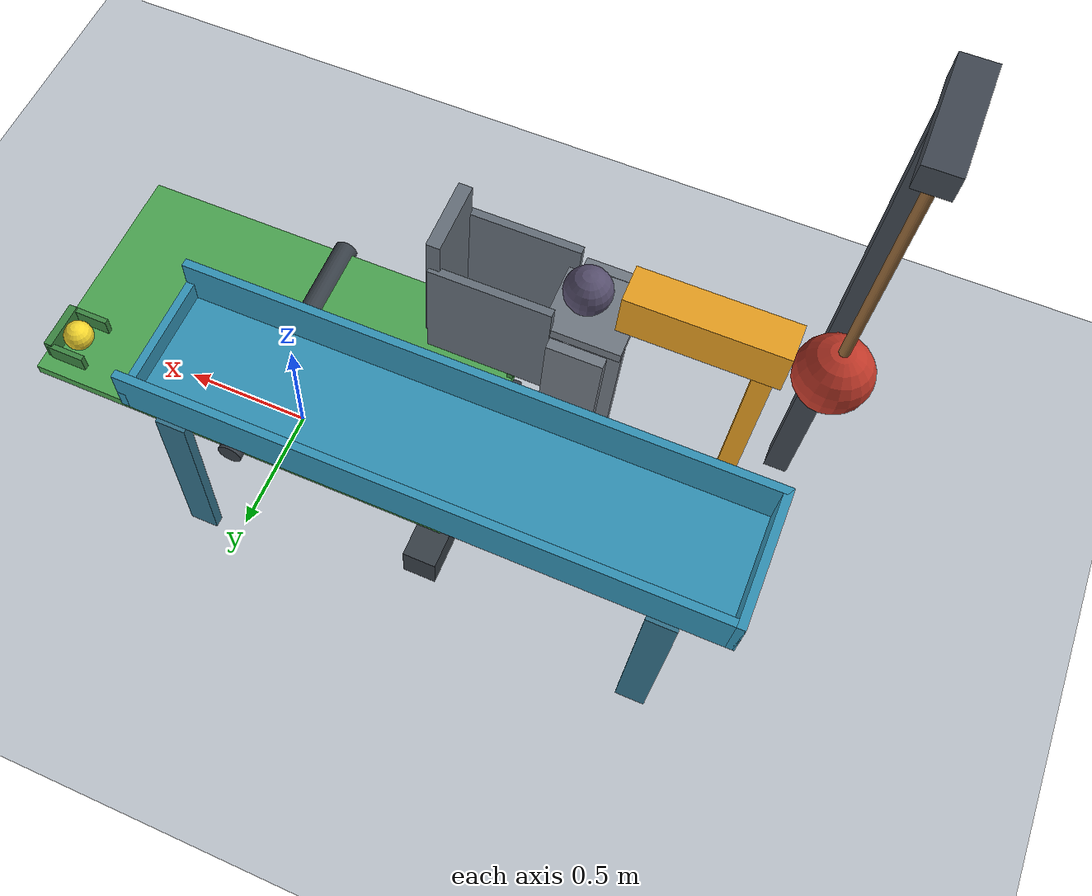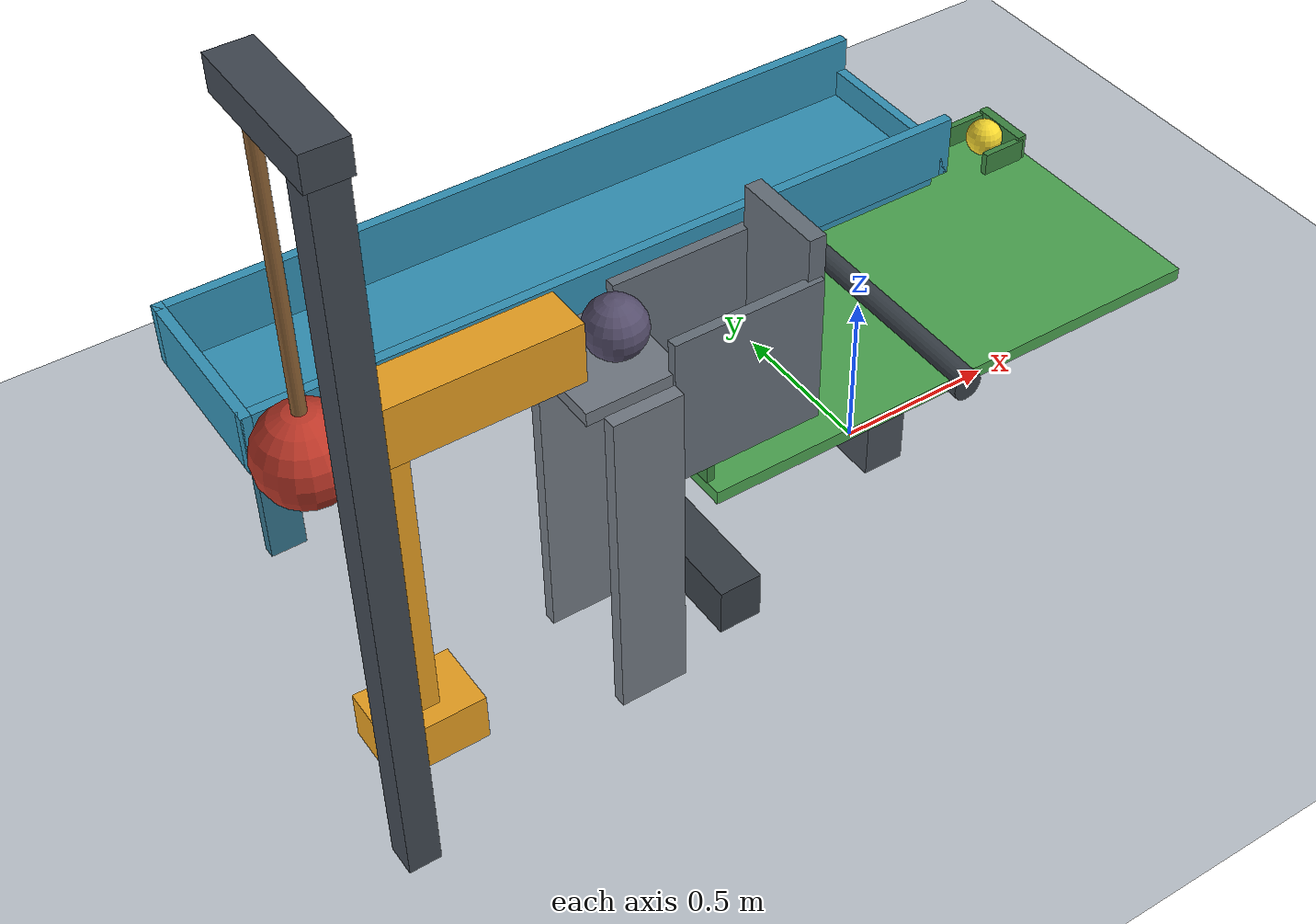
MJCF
<mujoco model="pendulum_cart_seesaw_catch_revised">
  <compiler angle="radian" autolimits="true"/>
  <option timestep="0.002" gravity="0 0 -9.81" integrator="implicitfast" solver="Newton" iterations="100" tolerance="1e-9"/>
  <size njmax="2000" nconmax="400"/>

  <visual>
    <global azimuth="135" elevation="-20"/>
    <headlight ambient="0.4 0.4 0.4" diffuse="0.7 0.7 0.7" specular="0.2 0.2 0.2"/>
  </visual>

  <worldbody>
    <light name="scene_light" pos="-1 -2 4" dir="0.2 0.3 -1"/>
    <camera name="overview" pos="-3.7 -5.2 3.0" xyaxes="0.88 -0.48 0 0.20 0.36 0.91"/>

    <geom name="floor" type="plane" pos="0 0 0" size="6 6 0.1" friction="1 0.02 0.01" condim="6" solref="0.008 1" rgba="0.75 0.78 0.81 1"/>

    <body name="pendulum_mount" pos="-1.81 -0.60 0">
      <geom name="pendulum_mount_post" type="box" pos="0 0 1.07" size="0.045 0.045 1.07" rgba="0.25 0.28 0.32 1"/>
      <geom name="pendulum_mount_crossbar" type="box" pos="0 0.15 2.14" size="0.055 0.20 0.045" contype="0" conaffinity="0" rgba="0.25 0.28 0.32 1"/>
    </body>

    <body name="weight_shelf" pos="0 0 0">
      <geom name="weight_shelf_deck" type="box" pos="-1.03 -0.30 1.01" size="0.14 0.14 0.02" friction="0.12 0.005 0.001" solref="0.006 1" rgba="0.45 0.48 0.52 1"/>
      <geom name="weight_shelf_outer_leg" type="box" pos="-1.03 -0.475 0.505" size="0.10 0.02 0.505" rgba="0.45 0.48 0.52 1"/>
      <geom name="weight_shelf_inner_leg" type="box" pos="-1.03 -0.125 0.505" size="0.10 0.02 0.505" rgba="0.45 0.48 0.52 1"/>
    </body>

    <body name="weight_chute" pos="0 0 0">
      <geom name="weight_chute_back" type="box" pos="-0.915 -0.30 0.825" size="0.015 0.135 0.15" friction="0.10 0.005 0.001" solref="0.008 1" rgba="0.40 0.44 0.48 1"/>
      <geom name="weight_chute_front" type="box" pos="-0.50 -0.30 1.00" size="0.025 0.135 0.25" friction="0.10 0.005 0.001" solref="0.012 1" rgba="0.40 0.44 0.48 1"/>
      <geom name="weight_chute_outer_side" type="box" pos="-0.705 -0.435 0.90" size="0.22 0.015 0.225" friction="0.10 0.005 0.001" solref="0.008 1" rgba="0.40 0.44 0.48 1"/>
      <geom name="weight_chute_inner_side" type="box" pos="-0.705 -0.165 0.90" size="0.22 0.015 0.225" friction="0.10 0.005 0.001" solref="0.008 1" rgba="0.40 0.44 0.48 1"/>
    </body>

    <body name="seesaw_support" pos="0 0 0">
      <geom name="seesaw_support_column" type="box" pos="0 0 0.25" size="0.065 0.16 0.25" contype="0" conaffinity="0" rgba="0.28 0.31 0.35 1"/>
      <geom name="seesaw_support_axle" type="cylinder" pos="0 0 0.55" quat="0.7071067812 0.7071067812 0 0" size="0.045 0.48" contype="0" conaffinity="0" rgba="0.22 0.25 0.28 1"/>
    </body>

    <body name="seesaw_lower_stop" pos="-0.705 0 0.075">
      <geom name="seesaw_lower_stop_block" type="box" size="0.065 0.43 0.075" friction="0.8 0.02 0.005" solref="0.004 1" solimp="0.95 0.99 0.001" rgba="0.22 0.25 0.28 1"/>
    </body>

    <body name="cup" pos="0 0 0">
      <geom name="cup_bottom" type="box" pos="-0.75 0.30 0.78" size="1.05 0.225 0.025" friction="1.2 0.05 0.04" condim="6" solref="0.006 1" solimp="0.95 0.99 0.001" rgba="0.20 0.58 0.72 1"/>
      <geom name="cup_left_wall" type="box" pos="-1.815 0.30 0.895" size="0.015 0.255 0.09" friction="1.2 0.05 0.04" condim="6" solref="0.006 1" rgba="0.20 0.58 0.72 1"/>
      <geom name="cup_right_wall" type="box" pos="0.315 0.30 0.845" size="0.015 0.255 0.04" friction="1.2 0.05 0.04" condim="6" solref="0.006 1" rgba="0.20 0.58 0.72 1"/>
      <geom name="cup_outer_wall" type="box" pos="-0.75 0.06 0.895" size="1.08 0.015 0.09" friction="1.2 0.05 0.04" condim="6" solref="0.006 1" rgba="0.20 0.58 0.72 1"/>
      <geom name="cup_inner_wall" type="box" pos="-0.75 0.54 0.895" size="1.08 0.015 0.09" friction="1.2 0.05 0.04" condim="6" solref="0.006 1" rgba="0.20 0.58 0.72 1"/>
      <geom name="cup_left_support" type="box" pos="-1.60 0.54 0.39" size="0.055 0.02 0.39" rgba="0.20 0.45 0.55 1"/>
      <geom name="cup_right_support" type="box" pos="0.15 0.54 0.39" size="0.055 0.02 0.39" rgba="0.20 0.45 0.55 1"/>
    </body>

    <body name="pendulum" pos="-1.81 -0.30 2.14">
      <joint name="pendulum_hinge" type="hinge" axis="0 1 0" damping="0.01" armature="0.002"/>
      <geom name="pendulum_rod" type="capsule" fromto="0 0 0 0 0 -1" size="0.018" mass="0.08" friction="0.15 0.005 0.001" rgba="0.55 0.38 0.20 1"/>
      <geom name="pendulum_bob" type="sphere" pos="0 0 -1" size="0.13" mass="2.0" friction="0.15 0.005 0.001" solref="0.004 1" solimp="0.95 0.99 0.001" rgba="0.75 0.22 0.16 1"/>
    </body>

    <body name="cart" pos="-1.62 -0.30 0.10">
      <joint name="cart_slide" type="slide" axis="1 0 0" range="0 0.32" damping="1.5" armature="0.005" solreflimit="0.004 1" solimplimit="0.95 0.99 0.001"/>
      <geom name="cart_base" type="box" size="0.14 0.10 0.075" mass="0.40" friction="0.2 0.005 0.001" rgba="0.92 0.63 0.13 1"/>
      <geom name="cart_mast" type="box" pos="0 0 0.55" size="0.035 0.045 0.50" mass="0.10" friction="0.15 0.005 0.001" rgba="0.92 0.63 0.13 1"/>
      <geom name="cart_ram" type="box" pos="0.22 0 1.045" size="0.28 0.07 0.09" mass="0.30" friction="0.12 0.005 0.001" solref="0.004 1" solimp="0.95 0.99 0.001" rgba="0.92 0.63 0.13 1"/>
    </body>

    <body name="seesaw" pos="0 0 0.55">
      <joint name="seesaw_hinge" type="hinge" axis="0 1 0" range="-0.52 0" damping="0.035" armature="0.002" solreflimit="0.004 1" solimplimit="0.95 0.99 0.001"/>
      <geom name="seesaw_beam" type="box" size="0.80 0.45 0.02" mass="0.14" friction="0.7 0.005 0.001" condim="3" solref="0.008 1" solimp="0.95 0.99 0.001" rgba="0.30 0.65 0.32 1"/>
      <geom name="seesaw_weight_end_lip" type="box" pos="-0.79 -0.30 0.085" size="0.012 0.105 0.065" mass="0.015" friction="0.7 0.005 0.001" solref="0.012 1" rgba="0.24 0.53 0.26 1"/>
      <geom name="seesaw_ball_right_lip" type="box" pos="0.77 0.30 0.06" size="0.015 0.09 0.04" mass="0.008" friction="0 0 0" condim="1" solref="0.006 1" rgba="0.24 0.53 0.26 1"/>
      <geom name="seesaw_ball_outer_lip" type="box" pos="0.70 0.215 0.055" size="0.07 0.01 0.035" mass="0.005" friction="0 0 0" condim="1" solref="0.006 1" rgba="0.24 0.53 0.26 1"/>
      <geom name="seesaw_ball_inner_lip" type="box" pos="0.70 0.385 0.055" size="0.07 0.01 0.035" mass="0.005" friction="0 0 0" condim="1" solref="0.006 1" rgba="0.24 0.53 0.26 1"/>
    </body>

    <body name="weight" pos="-0.995 -0.30 1.115">
      <freejoint name="weight_free"/>
      <geom name="weight_sphere" type="sphere" size="0.085" mass="2.0" friction="0.7 0.005 0.001" condim="3" solref="0.012 1" solimp="0.95 0.99 0.001" rgba="0.34 0.31 0.43 1"/>
    </body>

    <body name="ball" pos="0.70 0.30 0.625">
      <freejoint name="ball_free"/>
      <geom name="ball_sphere" type="sphere" size="0.055" mass="0.03" friction="0.15 0.001 0.001" condim="3" solref="0.008 1" solimp="0.95 0.99 0.001" rgba="0.97 0.85 0.18 1"/>
    </body>
  </worldbody>

  <contact>
    <pair name="pendulum_cart_impact" geom1="pendulum_bob" geom2="cart_ram" condim="3" friction="0.12 0.12 0.005 0.001 0.001" solref="0.004 1" solimp="0.95 0.99 0.001"/>
    <pair name="cart_weight_impact" geom1="cart_ram" geom2="weight_sphere" condim="3" friction="0.12 0.12 0.005 0.001 0.001" solref="0.006 1" solimp="0.95 0.99 0.001"/>
    <pair name="weight_shelf_contact" geom1="weight_sphere" geom2="weight_shelf_deck" condim="3" friction="0.12 0.12 0.005 0.001 0.001" solref="0.008 1"/>
    <pair name="weight_seesaw_contact" geom1="weight_sphere" geom2="seesaw_beam" condim="3" friction="0.7 0.7 0.005 0.001 0.001" solref="0.012 1" solimp="0.95 0.99 0.001"/>
    <pair name="ball_launch_surface" geom1="ball_sphere" geom2="seesaw_beam" condim="1" friction="0 0 0 0 0" solref="0.008 1" solimp="0.95 0.99 0.001"/>
    <pair name="ball_launch_end" geom1="ball_sphere" geom2="seesaw_ball_right_lip" condim="1" friction="0 0 0 0 0" solref="0.006 1" solimp="0.95 0.99 0.001"/>
    <pair name="ball_launch_outer_side" geom1="ball_sphere" geom2="seesaw_ball_outer_lip" condim="1" friction="0 0 0 0 0" solref="0.006 1"/>
    <pair name="ball_launch_inner_side" geom1="ball_sphere" geom2="seesaw_ball_inner_lip" condim="1" friction="0 0 0 0 0" solref="0.006 1"/>
  </contact>

  <keyframe>
    <key name="start" time="0" qpos="1.1592794807274085 0 0 -0.995 -0.30 1.115 1 0 0 0 0.70 0.30 0.625 1 0 0 0"/>
  </keyframe>
</mujoco>
